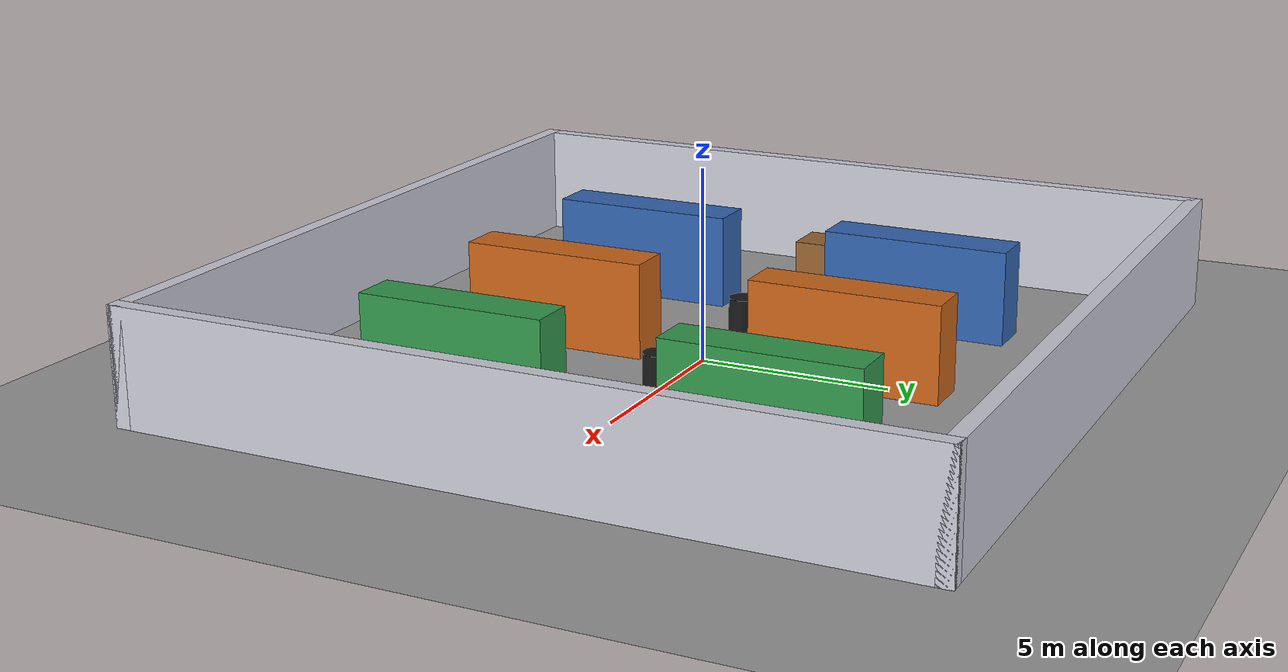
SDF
<?xml version="1.0" ?>
<sdf version="1.8">
  <world name="warehouse">

    <gravity>0 0 -9.81</gravity>

    <!-- Physics Configuration -->
    <physics name="1ms" type="ignored">
      <max_step_size>0.001</max_step_size>
      <real_time_factor>1.0</real_time_factor>
    </physics>

    <!-- Essential Gazebo Harmonic Plugins -->
    <plugin filename="gz-sim-physics-system" name="gz::sim::systems::Physics"/>
    <plugin filename="gz-sim-user-commands-system" name="gz::sim::systems::UserCommands"/>
    <plugin filename="gz-sim-scene-broadcaster-system" name="gz::sim::systems::SceneBroadcaster"/>
    <plugin filename="gz-sim-sensors-system" name="gz::sim::systems::Sensors">
      <render_engine>ogre2</render_engine>
    </plugin>
    <plugin filename="gz-sim-imu-system" name="gz::sim::systems::Imu"/>

    <!-- Lighting -->
    <light type="directional" name="sun">
      <cast_shadows>true</cast_shadows>
      <pose>0 0 15 0 0 0</pose>
      <diffuse>0.8 0.8 0.8 1</diffuse>
      <specular>0.2 0.2 0.2 1</specular>
      <attenuation>
        <range>1000</range>
        <constant>0.9</constant>
        <linear>0.01</linear>
        <quadratic>0.001</quadratic>
      </attenuation>
      <direction>-0.5 0.1 -0.9</direction>
    </light>

    <!-- Ground Plane (Concrete Warehouse Floor) -->
    <model name="ground_plane">
      <static>true</static>
      <link name="link">
        <collision name="collision">
          <geometry><plane><normal>0 0 1</normal><size>30 30</size></plane></geometry>
          <surface><friction><ode><mu>1.0</mu><mu2>1.0</mu2></ode></friction></surface>
        </collision>
        <visual name="visual">
          <geometry><plane><normal>0 0 1</normal><size>30 30</size></plane></geometry>
          <material>
            <ambient>0.6 0.6 0.6 1</ambient>
            <diffuse>0.6 0.6 0.6 1</diffuse>
          </material>
        </visual>
      </link>
    </model>

    <!-- ==================== PERIMETER WALLS (20m x 20m) ==================== -->
    <model name="north_wall">
      <static>true</static>
      <pose>0 10 1.5 0 0 0</pose>
      <link name="link">
        <collision name="col"><geometry><box><size>20.4 0.4 3.0</size></box></geometry></collision>
        <visual name="vis"><geometry><box><size>20.4 0.4 3.0</size></box></geometry><material><ambient>0.8 0.8 0.85 1</ambient><diffuse>0.8 0.8 0.85 1</diffuse></material></visual>
      </link>
    </model>

    <model name="south_wall">
      <static>true</static>
      <pose>0 -10 1.5 0 0 0</pose>
      <link name="link">
        <collision name="col"><geometry><box><size>20.4 0.4 3.0</size></box></geometry></collision>
        <visual name="vis"><geometry><box><size>20.4 0.4 3.0</size></box></geometry><material><ambient>0.8 0.8 0.85 1</ambient><diffuse>0.8 0.8 0.85 1</diffuse></material></visual>
      </link>
    </model>

    <model name="east_wall">
      <static>true</static>
      <pose>10 0 1.5 0 0 0</pose>
      <link name="link">
        <collision name="col"><geometry><box><size>0.4 20.4 3.0</size></box></geometry></collision>
        <visual name="vis"><geometry><box><size>0.4 20.4 3.0</size></box></geometry><material><ambient>0.8 0.8 0.85 1</ambient><diffuse>0.8 0.8 0.85 1</diffuse></material></visual>
      </link>
    </model>

    <model name="west_wall">
      <static>true</static>
      <pose>-10 0 1.5 0 0 0</pose>
      <link name="link">
        <collision name="col"><geometry><box><size>0.4 20.4 3.0</size></box></geometry></collision>
        <visual name="vis"><geometry><box><size>0.4 20.4 3.0</size></box></geometry><material><ambient>0.8 0.8 0.85 1</ambient><diffuse>0.8 0.8 0.85 1</diffuse></material></visual>
      </link>
    </model>

    <!-- ==================== STORAGE RACK AISLES ==================== -->
    <!-- Rack Row A (Left Aisle) -->
    <model name="rack_a1">
      <static>true</static>
      <pose>-5 4 1.25 0 0 0</pose>
      <link name="link">
        <collision name="col"><geometry><box><size>1.2 5.0 2.5</size></box></geometry></collision>
        <visual name="vis"><geometry><box><size>1.2 5.0 2.5</size></box></geometry><material><ambient>0.2 0.4 0.7 1</ambient><diffuse>0.2 0.4 0.7 1</diffuse></material></visual>
      </link>
    </model>

    <model name="rack_a2">
      <static>true</static>
      <pose>-5 -4 1.25 0 0 0</pose>
      <link name="link">
        <collision name="col"><geometry><box><size>1.2 5.0 2.5</size></box></geometry></collision>
        <visual name="vis"><geometry><box><size>1.2 5.0 2.5</size></box></geometry><material><ambient>0.2 0.4 0.7 1</ambient><diffuse>0.2 0.4 0.7 1</diffuse></material></visual>
      </link>
    </model>

    <!-- Rack Row B (Center Aisle) -->
    <model name="rack_b1">
      <static>true</static>
      <pose>0 4 1.25 0 0 0</pose>
      <link name="link">
        <collision name="col"><geometry><box><size>1.2 5.0 2.5</size></box></geometry></collision>
        <visual name="vis"><geometry><box><size>1.2 5.0 2.5</size></box></geometry><material><ambient>0.8 0.4 0.1 1</ambient><diffuse>0.8 0.4 0.1 1</diffuse></material></visual>
      </link>
    </model>

    <model name="rack_b2">
      <static>true</static>
      <pose>0 -4 1.25 0 0 0</pose>
      <link name="link">
        <collision name="col"><geometry><box><size>1.2 5.0 2.5</size></box></geometry></collision>
        <visual name="vis"><geometry><box><size>1.2 5.0 2.5</size></box></geometry><material><ambient>0.8 0.4 0.1 1</ambient><diffuse>0.8 0.4 0.1 1</diffuse></material></visual>
      </link>
    </model>

    <!-- Rack Row C (Right Aisle) -->
    <model name="rack_c1">
      <static>true</static>
      <pose>5 4 1.25 0 0 0</pose>
      <link name="link">
        <collision name="col"><geometry><box><size>1.2 5.0 2.5</size></box></geometry></collision>
        <visual name="vis"><geometry><box><size>1.2 5.0 2.5</size></box></geometry><material><ambient>0.2 0.6 0.3 1</ambient><diffuse>0.2 0.6 0.3 1</diffuse></material></visual>
      </link>
    </model>

    <model name="rack_c2">
      <static>true</static>
      <pose>5 -4 1.25 0 0 0</pose>
      <link name="link">
        <collision name="col"><geometry><box><size>1.2 5.0 2.5</size></box></geometry></collision>
        <visual name="vis"><geometry><box><size>1.2 5.0 2.5</size></box></geometry><material><ambient>0.2 0.6 0.3 1</ambient><diffuse>0.2 0.6 0.3 1</diffuse></material></visual>
      </link>
    </model>

    <!-- ==================== PALLET STACKS & BOXES ==================== -->
    <model name="pallet_stack_1">
      <static>true</static>
      <pose>-8 0 0.6 0 0 0</pose>
      <link name="link">
        <collision name="col"><geometry><box><size>1.2 1.2 1.2</size></box></geometry></collision>
        <visual name="vis"><geometry><box><size>1.2 1.2 1.2</size></box></geometry><material><ambient>0.6 0.4 0.2 1</ambient><diffuse>0.6 0.4 0.2 1</diffuse></material></visual>
      </link>
    </model>

    <model name="pallet_stack_2">
      <static>true</static>
      <pose>8 2 0.6 0 0 0.5</pose>
      <link name="link">
        <collision name="col"><geometry><box><size>1.2 1.2 1.2</size></box></geometry></collision>
        <visual name="vis"><geometry><box><size>1.2 1.2 1.2</size></box></geometry><material><ambient>0.6 0.4 0.2 1</ambient><diffuse>0.6 0.4 0.2 1</diffuse></material></visual>
      </link>
    </model>

    <model name="barrel_obstacle_1">
      <static>true</static>
      <pose>-2.5 0 0.5 0 0 0</pose>
      <link name="link">
        <collision name="col"><geometry><cylinder><radius>0.4</radius><length>1.0</length></cylinder></geometry></collision>
        <visual name="vis"><geometry><cylinder><radius>0.4</radius><length>1.0</length></cylinder></geometry><material><ambient>0.1 0.1 0.1 1</ambient><diffuse>0.1 0.1 0.1 1</diffuse></material></visual>
      </link>
    </model>

    <model name="barrel_obstacle_2">
      <static>true</static>
      <pose>2.5 0 0.5 0 0 0</pose>
      <link name="link">
        <collision name="col"><geometry><cylinder><radius>0.4</radius><length>1.0</length></cylinder></geometry></collision>
        <visual name="vis"><geometry><cylinder><radius>0.4</radius><length>1.0</length></cylinder></geometry><material><ambient>0.1 0.1 0.1 1</ambient><diffuse>0.1 0.1 0.1 1</diffuse></material></visual>
      </link>
    </model>

  </world>
</sdf>
